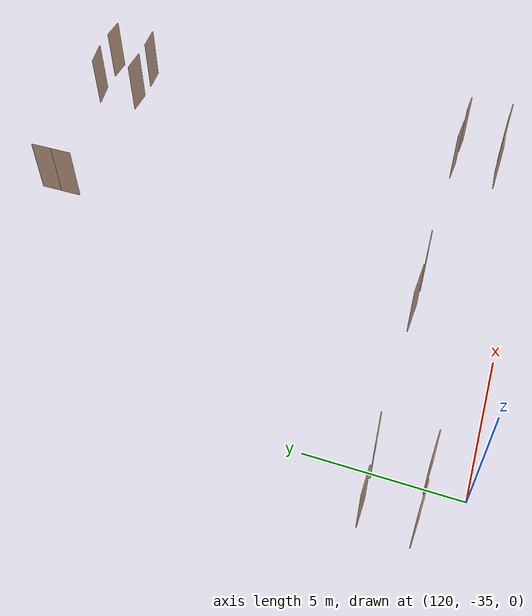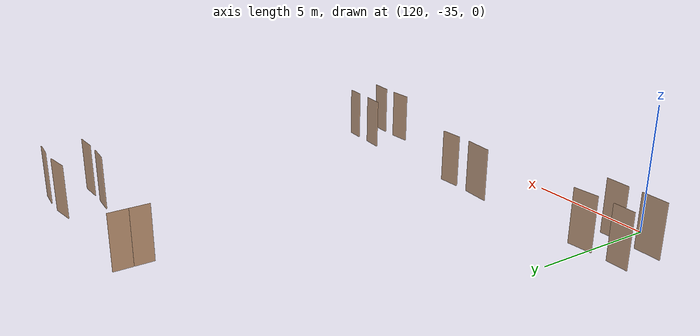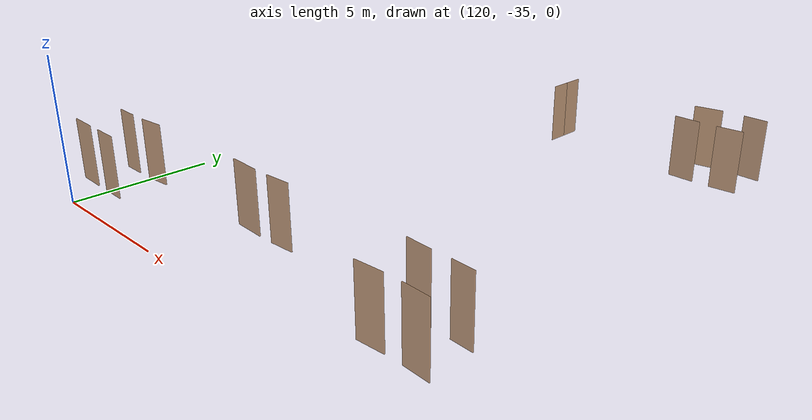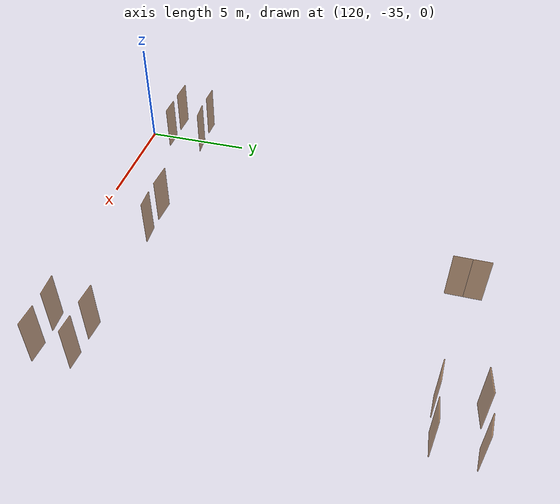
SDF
<sdf version="1.7">
 <world name="sim_world">
  <model name="puerta23">
   <pose>118.73741474846322 -32.13834625692635 0.0 0 0 -0.016416297145013498</pose>
   <link name="right">
    <pose>0 0 1.11 0 0 0</pose>
    <visual name="right_visual">
     <geometry><box><size>0.8973122046900142 0.03 2.2</size></box></geometry>
     <material>
      <ambient>0.5 0.25 0 0.6</ambient>
      <diffuse>0.5 0.25 0 0.6</diffuse>
      <pbr><metal><metalness>0.0</metalness></metal></pbr>
     </material>
    </visual>
    <collision name="right_collision">
     <geometry><box><size>0.8973122046900142 0.03 2.2</size></box></geometry>
     <surface><contact><collide_bitmask>0x02</collide_bitmask></contact></surface>
    </collision>
    <inertial>
     <mass>50.0</mass>
     <inertia><ixx>20.17041666666667</ixx><iyy>23.521538302856897</iyy><izz>3.358621636190225</izz></inertia>
    </inertial>
   </link>
   <joint name="right_joint" type="revolute">
    <parent>world</parent>
    <child>right</child>
    <axis><xyz>0 0 -1</xyz><limit><lower>0</lower><upper>1.57</upper></limit></axis>
    <pose>0.4536561023450071 0 0 0 0 0</pose>
   </joint>
   <plugin name="register_component" filename="libregister_component.so">
    <component name="Door">
     <v_max_door>0.5</v_max_door>
     <a_max_door>0.3</a_max_door>
     <a_nom_door>0.15</a_nom_door>
     <dx_min_door>0.01</dx_min_door>
     <f_max_door>500.0</f_max_door>
     <ros_interface>true</ros_interface>
     <door name="puerta23" type="SwingDoor" left_joint_name="empty_joint" right_joint_name="right_joint"/>
    </component>
   </plugin>
  </model>
  <model name="puerta24">
   <pose>118.72565519040381 -33.73308117250576 0.0 0 0 -0.027403382231023843</pose>
   <link name="right">
    <pose>0 0 1.11 0 0 0</pose>
    <visual name="right_visual">
     <geometry><box><size>1.1001909273704624 0.03 2.2</size></box></geometry>
     <material>
      <ambient>0.5 0.25 0 0.6</ambient>
      <diffuse>0.5 0.25 0 0.6</diffuse>
      <pbr><metal><metalness>0.0</metalness></metal></pbr>
     </material>
    </visual>
    <collision name="right_collision">
     <geometry><box><size>1.1001909273704624 0.03 2.2</size></box></geometry>
     <surface><contact><collide_bitmask>0x02</collide_bitmask></contact></surface>
    </collision>
    <inertial>
     <mass>50.0</mass>
     <inertia><ixx>20.17041666666667</ixx><iyy>25.210083652784498</iyy><izz>5.047166986117825</izz></inertia>
    </inertial>
   </link>
   <joint name="right_joint" type="revolute">
    <parent>world</parent>
    <child>right</child>
    <axis><xyz>0 0 1</xyz><limit><lower>0</lower><upper>1.57</upper></limit></axis>
    <pose>0.5550954636852312 0 0 0 0 0</pose>
   </joint>
   <plugin name="register_component" filename="libregister_component.so">
    <component name="Door">
     <v_max_door>0.5</v_max_door>
     <a_max_door>0.3</a_max_door>
     <a_nom_door>0.15</a_nom_door>
     <dx_min_door>0.01</dx_min_door>
     <f_max_door>500.0</f_max_door>
     <ros_interface>true</ros_interface>
     <door name="puerta24" type="SwingDoor" left_joint_name="empty_joint" right_joint_name="right_joint"/>
    </component>
   </plugin>
  </model>
  <model name="puerta25">
   <pose>120.3370933065184 -33.75588503822381 0.0 0 0 3.1262230047063087</pose>
   <link name="right">
    <pose>0 0 1.11 0 0 0</pose>
    <visual name="right_visual">
     <geometry><box><size>0.9782561890716672 0.03 2.2</size></box></geometry>
     <material>
      <ambient>0.5 0.25 0 0.6</ambient>
      <diffuse>0.5 0.25 0 0.6</diffuse>
      <pbr><metal><metalness>0.0</metalness></metal></pbr>
     </material>
    </visual>
    <collision name="right_collision">
     <geometry><box><size>0.9782561890716672 0.03 2.2</size></box></geometry>
     <surface><contact><collide_bitmask>0x02</collide_bitmask></contact></surface>
    </collision>
    <inertial>
     <mass>50.0</mass>
     <inertia><ixx>20.17041666666667</ixx><iyy>24.15410488107093</iyy><izz>3.9911882144042568</izz></inertia>
    </inertial>
   </link>
   <joint name="right_joint" type="revolute">
    <parent>world</parent>
    <child>right</child>
    <axis><xyz>0 0 -1</xyz><limit><lower>0</lower><upper>1.57</upper></limit></axis>
    <pose>0.4941280945358336 0 0 0 0 0</pose>
   </joint>
   <plugin name="register_component" filename="libregister_component.so">
    <component name="Door">
     <v_max_door>0.5</v_max_door>
     <a_max_door>0.3</a_max_door>
     <a_nom_door>0.15</a_nom_door>
     <dx_min_door>0.01</dx_min_door>
     <f_max_door>500.0</f_max_door>
     <ros_interface>true</ros_interface>
     <door name="puerta25" type="SwingDoor" left_joint_name="empty_joint" right_joint_name="right_joint"/>
    </component>
   </plugin>
  </model>
  <model name="puerta26">
   <pose>120.35850874498794 -32.10117427286381 0.0 0 0 -3.0548490071708736</pose>
   <link name="right">
    <pose>0 0 1.11 0 0 0</pose>
    <visual name="right_visual">
     <geometry><box><size>1.0200468010529855 0.03 2.2</size></box></geometry>
     <material>
      <ambient>0.5 0.25 0 0.6</ambient>
      <diffuse>0.5 0.25 0 0.6</diffuse>
      <pbr><metal><metalness>0.0</metalness></metal></pbr>
     </material>
    </visual>
    <collision name="right_collision">
     <geometry><box><size>1.0200468010529855 0.03 2.2</size></box></geometry>
     <surface><contact><collide_bitmask>0x02</collide_bitmask></contact></surface>
    </collision>
    <inertial>
     <mass>50.0</mass>
     <inertia><ixx>20.17041666666667</ixx><iyy>24.50206448474346</iyy><izz>4.339147818076788</izz></inertia>
    </inertial>
   </link>
   <joint name="right_joint" type="revolute">
    <parent>world</parent>
    <child>right</child>
    <axis><xyz>0 0 1</xyz><limit><lower>0</lower><upper>1.57</upper></limit></axis>
    <pose>0.5150234005264928 0 0 0 0 0</pose>
   </joint>
   <plugin name="register_component" filename="libregister_component.so">
    <component name="Door">
     <v_max_door>0.5</v_max_door>
     <a_max_door>0.3</a_max_door>
     <a_nom_door>0.15</a_nom_door>
     <dx_min_door>0.01</dx_min_door>
     <f_max_door>500.0</f_max_door>
     <ros_interface>true</ros_interface>
     <door name="puerta26" type="SwingDoor" left_joint_name="empty_joint" right_joint_name="right_joint"/>
    </component>
   </plugin>
  </model>
  <model name="puerta27">
   <pose>125.93567374484067 -32.0863012718835 0.0 0 0 -0.049343492494294386</pose>
   <link name="right">
    <pose>0 0 1.11 0 0 0</pose>
    <visual name="right_visual">
     <geometry><box><size>1.196160112134389 0.03 2.2</size></box></geometry>
     <material>
      <ambient>0.5 0.25 0 0.6</ambient>
      <diffuse>0.5 0.25 0 0.6</diffuse>
      <pbr><metal><metalness>0.0</metalness></metal></pbr>
     </material>
    </visual>
    <collision name="right_collision">
     <geometry><box><size>1.196160112134389 0.03 2.2</size></box></geometry>
     <surface><contact><collide_bitmask>0x02</collide_bitmask></contact></surface>
    </collision>
    <inertial>
     <mass>50.0</mass>
     <inertia><ixx>20.17041666666667</ixx><iyy>26.128329224422313</iyy><izz>5.965412557755641</izz></inertia>
    </inertial>
   </link>
   <joint name="right_joint" type="revolute">
    <parent>world</parent>
    <child>right</child>
    <axis><xyz>0 0 -1</xyz><limit><lower>0</lower><upper>1.57</upper></limit></axis>
    <pose>0.6030800560671945 0 0 0 0 0</pose>
   </joint>
   <plugin name="register_component" filename="libregister_component.so">
    <component name="Door">
     <v_max_door>0.5</v_max_door>
     <a_max_door>0.3</a_max_door>
     <a_nom_door>0.15</a_nom_door>
     <dx_min_door>0.01</dx_min_door>
     <f_max_door>500.0</f_max_door>
     <ros_interface>true</ros_interface>
     <door name="puerta27" type="SwingDoor" left_joint_name="empty_joint" right_joint_name="right_joint"/>
    </component>
   </plugin>
  </model>
  <model name="puerta30">
   <pose>127.59396076220443 -32.093727253985406 0.0 0 0 -3.0947278202924484</pose>
   <link name="right">
    <pose>0 0 1.11 0 0 0</pose>
    <visual name="right_visual">
     <geometry><box><size>0.9428762046886623 0.03 2.2</size></box></geometry>
     <material>
      <ambient>0.5 0.25 0 0.6</ambient>
      <diffuse>0.5 0.25 0 0.6</diffuse>
      <pbr><metal><metalness>0.0</metalness></metal></pbr>
     </material>
    </visual>
    <collision name="right_collision">
     <geometry><box><size>0.9428762046886623 0.03 2.2</size></box></geometry>
     <surface><contact><collide_bitmask>0x02</collide_bitmask></contact></surface>
    </collision>
    <inertial>
     <mass>50.0</mass>
     <inertia><ixx>20.17041666666667</ixx><iyy>23.870898072367073</iyy><izz>3.707981405700401</izz></inertia>
    </inertial>
   </link>
   <joint name="right_joint" type="revolute">
    <parent>world</parent>
    <child>right</child>
    <axis><xyz>0 0 1</xyz><limit><lower>0</lower><upper>1.57</upper></limit></axis>
    <pose>0.47643810234433115 0 0 0 0 0</pose>
   </joint>
   <plugin name="register_component" filename="libregister_component.so">
    <component name="Door">
     <v_max_door>0.5</v_max_door>
     <a_max_door>0.3</a_max_door>
     <a_nom_door>0.15</a_nom_door>
     <dx_min_door>0.01</dx_min_door>
     <f_max_door>500.0</f_max_door>
     <ros_interface>true</ros_interface>
     <door name="puerta30" type="SwingDoor" left_joint_name="empty_joint" right_joint_name="right_joint"/>
    </component>
   </plugin>
  </model>
  <model name="puerta31">
   <pose>133.30696022787032 -33.72153198221129 0.0 0 0 0.055539658106781346</pose>
   <link name="right">
    <pose>0 0 1.11 0 0 0</pose>
    <visual name="right_visual">
     <geometry><box><size>0.9540873743725855 0.03 2.2</size></box></geometry>
     <material>
      <ambient>0.5 0.25 0 0.6</ambient>
      <diffuse>0.5 0.25 0 0.6</diffuse>
      <pbr><metal><metalness>0.0</metalness></metal></pbr>
     </material>
    </visual>
    <collision name="right_collision">
     <geometry><box><size>0.9540873743725855 0.03 2.2</size></box></geometry>
     <surface><contact><collide_bitmask>0x02</collide_bitmask></contact></surface>
    </collision>
    <inertial>
     <mass>50.0</mass>
     <inertia><ixx>20.17041666666667</ixx><iyy>23.95951132473823</iyy><izz>3.796594658071559</izz></inertia>
    </inertial>
   </link>
   <joint name="right_joint" type="revolute">
    <parent>world</parent>
    <child>right</child>
    <axis><xyz>0 0 1</xyz><limit><lower>0</lower><upper>1.57</upper></limit></axis>
    <pose>0.48204368718629276 0 0 0 0 0</pose>
   </joint>
   <plugin name="register_component" filename="libregister_component.so">
    <component name="Door">
     <v_max_door>0.5</v_max_door>
     <a_max_door>0.3</a_max_door>
     <a_nom_door>0.15</a_nom_door>
     <dx_min_door>0.01</dx_min_door>
     <f_max_door>500.0</f_max_door>
     <ros_interface>true</ros_interface>
     <door name="puerta31" type="SwingDoor" left_joint_name="empty_joint" right_joint_name="right_joint"/>
    </component>
   </plugin>
  </model>
  <model name="puerta32">
   <pose>133.32726071718577 -32.10115323608731 0.0 0 0 -0.06548456715027876</pose>
   <link name="right">
    <pose>0 0 1.11 0 0 0</pose>
    <visual name="right_visual">
     <geometry><box><size>0.8991385499192738 0.03 2.2</size></box></geometry>
     <material>
      <ambient>0.5 0.25 0 0.6</ambient>
      <diffuse>0.5 0.25 0 0.6</diffuse>
      <pbr><metal><metalness>0.0</metalness></metal></pbr>
     </material>
    </visual>
    <collision name="right_collision">
     <geometry><box><size>0.8991385499192738 0.03 2.2</size></box></geometry>
     <surface><contact><collide_bitmask>0x02</collide_bitmask></contact></surface>
    </collision>
    <inertial>
     <mass>50.0</mass>
     <inertia><ixx>20.17041666666667</ixx><iyy>23.5352088831289</iyy><izz>3.372292216462227</izz></inertia>
    </inertial>
   </link>
   <joint name="right_joint" type="revolute">
    <parent>world</parent>
    <child>right</child>
    <axis><xyz>0 0 -1</xyz><limit><lower>0</lower><upper>1.57</upper></limit></axis>
    <pose>0.4545692749596369 0 0 0 0 0</pose>
   </joint>
   <plugin name="register_component" filename="libregister_component.so">
    <component name="Door">
     <v_max_door>0.5</v_max_door>
     <a_max_door>0.3</a_max_door>
     <a_nom_door>0.15</a_nom_door>
     <dx_min_door>0.01</dx_min_door>
     <f_max_door>500.0</f_max_door>
     <ros_interface>true</ros_interface>
     <door name="puerta32" type="SwingDoor" left_joint_name="empty_joint" right_joint_name="right_joint"/>
    </component>
   </plugin>
  </model>
  <model name="puerta33">
   <pose>134.82939174264442 -32.15321925790666 0.0 0 0 3.08502110808974</pose>
   <link name="right">
    <pose>0 0 1.11 0 0 0</pose>
    <visual name="right_visual">
     <geometry><box><size>0.7795110300568253 0.03 2.2</size></box></geometry>
     <material>
      <ambient>0.5 0.25 0 0.6</ambient>
      <diffuse>0.5 0.25 0 0.6</diffuse>
      <pbr><metal><metalness>0.0</metalness></metal></pbr>
     </material>
    </visual>
    <collision name="right_collision">
     <geometry><box><size>0.7795110300568253 0.03 2.2</size></box></geometry>
     <surface><contact><collide_bitmask>0x02</collide_bitmask></contact></surface>
    </collision>
    <inertial>
     <mass>50.0</mass>
     <inertia><ixx>20.17041666666667</ixx><iyy>22.69848935825106</iyy><izz>2.535572691584387</izz></inertia>
    </inertial>
   </link>
   <joint name="right_joint" type="revolute">
    <parent>world</parent>
    <child>right</child>
    <axis><xyz>0 0 1</xyz><limit><lower>0</lower><upper>1.57</upper></limit></axis>
    <pose>0.39475551502841266 0 0 0 0 0</pose>
   </joint>
   <plugin name="register_component" filename="libregister_component.so">
    <component name="Door">
     <v_max_door>0.5</v_max_door>
     <a_max_door>0.3</a_max_door>
     <a_nom_door>0.15</a_nom_door>
     <dx_min_door>0.01</dx_min_door>
     <f_max_door>500.0</f_max_door>
     <ros_interface>true</ros_interface>
     <door name="puerta33" type="SwingDoor" left_joint_name="empty_joint" right_joint_name="right_joint"/>
    </component>
   </plugin>
  </model>
  <model name="puerta34">
   <pose>134.84876661379417 -33.71909171613814 0.0 0 0 3.089567569582924</pose>
   <link name="right">
    <pose>0 0 1.11 0 0 0</pose>
    <visual name="right_visual">
     <geometry><box><size>0.9252983344265415 0.03 2.2</size></box></geometry>
     <material>
      <ambient>0.5 0.25 0 0.6</ambient>
      <diffuse>0.5 0.25 0 0.6</diffuse>
      <pbr><metal><metalness>0.0</metalness></metal></pbr>
     </material>
    </visual>
    <collision name="right_collision">
     <geometry><box><size>0.9252983344265415 0.03 2.2</size></box></geometry>
     <surface><contact><collide_bitmask>0x02</collide_bitmask></contact></surface>
    </collision>
    <inertial>
     <mass>50.0</mass>
     <inertia><ixx>20.17041666666667</ixx><iyy>23.734070865385554</iyy><izz>3.571154198718883</izz></inertia>
    </inertial>
   </link>
   <joint name="right_joint" type="revolute">
    <parent>world</parent>
    <child>right</child>
    <axis><xyz>0 0 -1</xyz><limit><lower>0</lower><upper>1.57</upper></limit></axis>
    <pose>0.46764916721327077 0 0 0 0 0</pose>
   </joint>
   <plugin name="register_component" filename="libregister_component.so">
    <component name="Door">
     <v_max_door>0.5</v_max_door>
     <a_max_door>0.3</a_max_door>
     <a_nom_door>0.15</a_nom_door>
     <dx_min_door>0.01</dx_min_door>
     <f_max_door>500.0</f_max_door>
     <ros_interface>true</ros_interface>
     <door name="puerta34" type="SwingDoor" left_joint_name="empty_joint" right_joint_name="right_joint"/>
    </component>
   </plugin>
  </model>
  <model name="puerta65">
   <pose>134.94906996411123 -17.15338755211861 0.0 0 0 3.0730107524832633</pose>
   <link name="right">
    <pose>0 0 1.11 0 0 0</pose>
    <visual name="right_visual">
     <geometry><box><size>0.8544558665927899 0.03 2.2</size></box></geometry>
     <material>
      <ambient>0.5 0.25 0 0.6</ambient>
      <diffuse>0.5 0.25 0 0.6</diffuse>
      <pbr><metal><metalness>0.0</metalness></metal></pbr>
     </material>
    </visual>
    <collision name="right_collision">
     <geometry><box><size>0.8544558665927899 0.03 2.2</size></box></geometry>
     <surface><contact><collide_bitmask>0x02</collide_bitmask></contact></surface>
    </collision>
    <inertial>
     <mass>50.0</mass>
     <inertia><ixx>20.17041666666667</ixx><iyy>23.20872844981182</iyy><izz>3.0458117831451488</izz></inertia>
    </inertial>
   </link>
   <joint name="right_joint" type="revolute">
    <parent>world</parent>
    <child>right</child>
    <axis><xyz>0 0 1</xyz><limit><lower>0</lower><upper>1.57</upper></limit></axis>
    <pose>0.432227933296395 0 0 0 0 0</pose>
   </joint>
   <plugin name="register_component" filename="libregister_component.so">
    <component name="Door">
     <v_max_door>0.5</v_max_door>
     <a_max_door>0.3</a_max_door>
     <a_nom_door>0.15</a_nom_door>
     <dx_min_door>0.01</dx_min_door>
     <f_max_door>500.0</f_max_door>
     <ros_interface>true</ros_interface>
     <door name="puerta65" type="SwingDoor" left_joint_name="empty_joint" right_joint_name="right_joint"/>
    </component>
   </plugin>
  </model>
  <model name="puerta66">
   <pose>134.82272308449626 -18.834983317836233 0.0 0 0 -3.084301946349943</pose>
   <link name="right">
    <pose>0 0 1.11 0 0 0</pose>
    <visual name="right_visual">
     <geometry><box><size>0.9275906778476251 0.03 2.2</size></box></geometry>
     <material>
      <ambient>0.5 0.25 0 0.6</ambient>
      <diffuse>0.5 0.25 0 0.6</diffuse>
      <pbr><metal><metalness>0.0</metalness></metal></pbr>
     </material>
    </visual>
    <collision name="right_collision">
     <geometry><box><size>0.9275906778476251 0.03 2.2</size></box></geometry>
     <surface><contact><collide_bitmask>0x02</collide_bitmask></contact></surface>
    </collision>
    <inertial>
     <mass>50.0</mass>
     <inertia><ixx>20.17041666666667</ixx><iyy>23.751768606790908</iyy><izz>3.588851940124236</izz></inertia>
    </inertial>
   </link>
   <joint name="right_joint" type="revolute">
    <parent>world</parent>
    <child>right</child>
    <axis><xyz>0 0 -1</xyz><limit><lower>0</lower><upper>1.57</upper></limit></axis>
    <pose>0.46879533892381253 0 0 0 0 0</pose>
   </joint>
   <plugin name="register_component" filename="libregister_component.so">
    <component name="Door">
     <v_max_door>0.5</v_max_door>
     <a_max_door>0.3</a_max_door>
     <a_nom_door>0.15</a_nom_door>
     <dx_min_door>0.01</dx_min_door>
     <f_max_door>500.0</f_max_door>
     <ros_interface>true</ros_interface>
     <door name="puerta66" type="SwingDoor" left_joint_name="empty_joint" right_joint_name="right_joint"/>
    </component>
   </plugin>
  </model>
  <model name="puerta67">
   <pose>133.27889716802912 -18.837907429768713 0.0 0 0 -0.05088548593366195</pose>
   <link name="right">
    <pose>0 0 1.11 0 0 0</pose>
    <visual name="right_visual">
     <geometry><box><size>0.9305094536106847 0.03 2.2</size></box></geometry>
     <material>
      <ambient>0.5 0.25 0 0.6</ambient>
      <diffuse>0.5 0.25 0 0.6</diffuse>
      <pbr><metal><metalness>0.0</metalness></metal></pbr>
     </material>
    </visual>
    <collision name="right_collision">
     <geometry><box><size>0.9305094536106847 0.03 2.2</size></box></geometry>
     <surface><contact><collide_bitmask>0x02</collide_bitmask></contact></surface>
    </collision>
    <inertial>
     <mass>50.0</mass>
     <inertia><ixx>20.17041666666667</ixx><iyy>23.774366013578568</iyy><izz>3.611449346911896</izz></inertia>
    </inertial>
   </link>
   <joint name="right_joint" type="revolute">
    <parent>world</parent>
    <child>right</child>
    <axis><xyz>0 0 1</xyz><limit><lower>0</lower><upper>1.57</upper></limit></axis>
    <pose>0.47025472680534236 0 0 0 0 0</pose>
   </joint>
   <plugin name="register_component" filename="libregister_component.so">
    <component name="Door">
     <v_max_door>0.5</v_max_door>
     <a_max_door>0.3</a_max_door>
     <a_nom_door>0.15</a_nom_door>
     <dx_min_door>0.01</dx_min_door>
     <f_max_door>500.0</f_max_door>
     <ros_interface>true</ros_interface>
     <door name="puerta67" type="SwingDoor" left_joint_name="empty_joint" right_joint_name="right_joint"/>
    </component>
   </plugin>
  </model>
  <model name="puerta68">
   <pose>133.2409678600128 -17.20086755666255 0.0 0 0 0.15101710733818446</pose>
   <link name="right">
    <pose>0 0 1.11 0 0 0</pose>
    <visual name="right_visual">
     <geometry><box><size>1.0149650157347112 0.03 2.2</size></box></geometry>
     <material>
      <ambient>0.5 0.25 0 0.6</ambient>
      <diffuse>0.5 0.25 0 0.6</diffuse>
      <pbr><metal><metalness>0.0</metalness></metal></pbr>
     </material>
    </visual>
    <collision name="right_collision">
     <geometry><box><size>1.0149650157347112 0.03 2.2</size></box></geometry>
     <surface><contact><collide_bitmask>0x02</collide_bitmask></contact></surface>
    </collision>
    <inertial>
     <mass>50.0</mass>
     <inertia><ixx>20.17041666666667</ixx><iyy>24.458974929855682</iyy><izz>4.2960582631890105</izz></inertia>
    </inertial>
   </link>
   <joint name="right_joint" type="revolute">
    <parent>world</parent>
    <child>right</child>
    <axis><xyz>0 0 -1</xyz><limit><lower>0</lower><upper>1.57</upper></limit></axis>
    <pose>0.5124825078673556 0 0 0 0 0</pose>
   </joint>
   <plugin name="register_component" filename="libregister_component.so">
    <component name="Door">
     <v_max_door>0.5</v_max_door>
     <a_max_door>0.3</a_max_door>
     <a_nom_door>0.15</a_nom_door>
     <dx_min_door>0.01</dx_min_door>
     <f_max_door>500.0</f_max_door>
     <ros_interface>true</ros_interface>
     <door name="puerta68" type="SwingDoor" left_joint_name="empty_joint" right_joint_name="right_joint"/>
    </component>
   </plugin>
  </model>
  <model name="puerta69">
   <pose>127.65784945241266 -18.052015533555753 0.0 0 0 1.5707963267948966</pose>
   <link name="right">
    <pose>0.38702409552379446 0 1.11 0 0 0</pose>
    <visual name="right_visual">
     <geometry><box><size>0.7640481910475889 0.03 2.2</size></box></geometry>
     <material>
      <ambient>0.5 0.25 0 0.6</ambient>
      <diffuse>0.5 0.25 0 0.6</diffuse>
      <pbr><metal><metalness>0.0</metalness></metal></pbr>
     </material>
    </visual>
    <collision name="right_collision">
     <geometry><box><size>0.7640481910475889 0.03 2.2</size></box></geometry>
     <surface><contact><collide_bitmask>0x02</collide_bitmask></contact></surface>
    </collision>
    <inertial>
     <mass>50.0</mass>
     <inertia><ixx>20.17041666666667</ixx><iyy>22.599040159346227</iyy><izz>2.436123492679554</izz></inertia>
    </inertial>
   </link>
   <joint name="right_joint" type="revolute">
    <parent>world</parent>
    <child>right</child>
    <axis><xyz>0 0 -1</xyz><limit><lower>0</lower><upper>1.57</upper></limit></axis>
    <pose>0.38702409552379446 0 0 0 0 0</pose>
   </joint>
   <link name="left">
    <pose>-0.38702409552379446 0 1.11 0 0 0</pose>
    <visual name="left_visual">
     <geometry><box><size>0.7640481910475889 0.03 2.2</size></box></geometry>
     <material>
      <ambient>0.5 0.25 0 0.6</ambient>
      <diffuse>0.5 0.25 0 0.6</diffuse>
      <pbr><metal><metalness>0.0</metalness></metal></pbr>
     </material>
    </visual>
    <collision name="left_collision">
     <geometry><box><size>0.7640481910475889 0.03 2.2</size></box></geometry>
     <surface><contact><collide_bitmask>0x02</collide_bitmask></contact></surface>
    </collision>
    <inertial>
     <mass>50.0</mass>
     <inertia><ixx>20.17041666666667</ixx><iyy>22.599040159346227</iyy><izz>2.436123492679554</izz></inertia>
    </inertial>
   </link>
   <joint name="left_joint" type="revolute">
    <parent>world</parent>
    <child>left</child>
    <axis><xyz>0 0 -1</xyz><limit><lower>-1.57</lower><upper>0</upper></limit></axis>
    <pose>-0.38702409552379446 0 0 0 0 0</pose>
   </joint>
   <plugin name="register_component" filename="libregister_component.so">
    <component name="Door">
     <v_max_door>0.5</v_max_door>
     <a_max_door>0.3</a_max_door>
     <a_nom_door>0.15</a_nom_door>
     <dx_min_door>0.01</dx_min_door>
     <f_max_door>500.0</f_max_door>
     <ros_interface>true</ros_interface>
     <door name="puerta69" type="DoubleSwingDoor" left_joint_name="left_joint" right_joint_name="right_joint"/>
    </component>
   </plugin>
  </model>
 </world>
</sdf>
